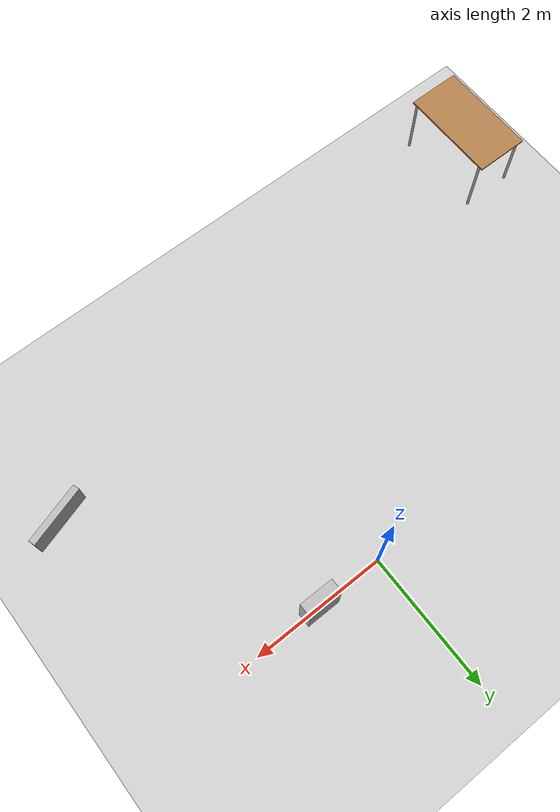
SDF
<sdf version="1.6">
 <world name="yolo_test_world">
  <include><uri>model://sun</uri></include>
  <include><uri>model://ground_plane</uri></include>
  <include>
   <name>person_block</name>
   <uri>model://person_block</uri>
   <static>true</static>
   <pose>1 0 0 0 0 0</pose>
  </include>
  <include>
   <name>table</name>
   <uri>model://table</uri>
   <static>true</static>
   <pose>-5 -4 0 0 0 1.57</pose>
  </include>
  <include>
   <name>cat_block</name>
   <uri>model://cat_block</uri>
   <static>true</static>
   <pose>3 -3 0 0 0 0.3</pose>
  </include>
 </world>
</sdf>

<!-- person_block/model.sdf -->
<sdf version="1.6">
  <model name="person_block">
    <static>true</static>
    <link name="link">
      <collision name="collision">
        <geometry>
          <mesh>
            <scale>1 1 1</scale>
            <uri>model://person_block/meshes/person_block.stl</uri>
          </mesh>
        </geometry>
        <surface>
          <friction>
            <ode>
              <mu>1.2</mu>
              <mu2>1.2</mu2>
            </ode>
          </friction>
        </surface>
      </collision>
      <visual name="visual">
        <geometry>
          <mesh>
            <scale>1 1 1</scale>
            <uri>model://person_block/meshes/person_block.dae</uri>
          </mesh>
        </geometry>
      </visual>
    </link>
  </model>
</sdf>

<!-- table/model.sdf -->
<sdf version="1.5">
  <model name="table">
    <static>true</static>
    <link name="link">
      <collision name="surface">
        <pose>0 0 1.0 0 0 0</pose>
        <geometry>
          <box>
            <size>1.5 0.8 0.03</size>
          </box>
        </geometry>
        <surface>
          <friction>
            <ode>
              <mu>0.6</mu>
              <mu2>0.6</mu2>
            </ode>
          </friction>
        </surface>
      </collision>
      <visual name="visual1">
        <pose>0 0 1.0 0 0 0</pose>
        <geometry>
          <box>
            <size>1.5 0.8 0.03</size>
          </box>
        </geometry>
        <material>
          <script>
            <uri>model://media/materials/scripts/gazebo.material</uri>
            <name>Gazebo/Wood</name>
          </script>
        </material>
      </visual>
      <collision name="front_left_leg">
        <pose>0.68 0.38 0.5 0 0 0</pose>
        <geometry>
          <cylinder>
            <radius>0.02</radius>
            <length>1.0</length>
          </cylinder>
        </geometry>
      </collision>
      <visual name="front_left_leg">
        <pose>0.68 0.38 0.5 0 0 0</pose>
        <geometry>
          <cylinder>
            <radius>0.02</radius>
            <length>1.0</length>
          </cylinder>
        </geometry>
        <material>
          <script>
            <uri>model://media/materials/scripts/gazebo.material</uri>
            <name>Gazebo/Grey</name>
          </script>
        </material>
      </visual>
      <collision name="front_right_leg">
        <pose>0.68 -0.38 0.5 0 0 0</pose>
        <geometry>
          <cylinder>
            <radius>0.02</radius>
            <length>1.0</length>
          </cylinder>
        </geometry>
      </collision>
      <visual name="front_right_leg">
        <pose>0.68 -0.38 0.5 0 0 0</pose>
        <geometry>
          <cylinder>
            <radius>0.02</radius>
            <length>1.0</length>
          </cylinder>
        </geometry>
        <material>
          <script>
            <uri>model://media/materials/scripts/gazebo.material</uri>
            <name>Gazebo/Grey</name>
          </script>
        </material>
      </visual>
      <collision name="back_right_leg">
        <pose>-0.68 -0.38 0.5 0 0 0</pose>
        <geometry>
          <cylinder>
            <radius>0.02</radius>
            <length>1.0</length>
          </cylinder>
        </geometry>
      </collision>
      <visual name="back_right_leg">
        <pose>-0.68 -0.38 0.5 0 0 0</pose>
        <geometry>
          <cylinder>
            <radius>0.02</radius>
            <length>1.0</length>
          </cylinder>
        </geometry>
        <material>
          <script>
            <uri>model://media/materials/scripts/gazebo.material</uri>
            <name>Gazebo/Grey</name>
          </script>
        </material>
      </visual>
      <collision name="back_left_leg">
        <pose>-0.68 0.38 0.5 0 0 0</pose>
        <geometry>
          <cylinder>
            <radius>0.02</radius>
            <length>1.0</length>
          </cylinder>
        </geometry>
      </collision>
      <visual name="back_left_leg">
        <pose>-0.68 0.38 0.5 0 0 0</pose>
        <geometry>
          <cylinder>
            <radius>0.02</radius>
            <length>1.0</length>
          </cylinder>
        </geometry>
        <material>
          <script>
            <uri>model://media/materials/scripts/gazebo.material</uri>
            <name>Gazebo/Grey</name>
          </script>
        </material>
      </visual>
    </link>
  </model>
</sdf>

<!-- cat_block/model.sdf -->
<sdf version="1.6">
  <model name="cat_block">
    <static>true</static>
    <link name="link">
      <collision name="collision">
        <geometry>
          <mesh>
            <scale>1 1 1</scale>
            <uri>model://cat_block/meshes/cat_block.stl</uri>
          </mesh>
        </geometry>
        <surface>
          <friction>
            <ode>
              <mu>1.2</mu>
              <mu2>1.2</mu2>
            </ode>
          </friction>
        </surface>
      </collision>
      <visual name="visual">
        <geometry>
          <mesh>
            <scale>1 1 1</scale>
            <uri>model://cat_block/meshes/cat_block.dae</uri>
          </mesh>
        </geometry>
      </visual>
    </link>
  </model>
</sdf>
